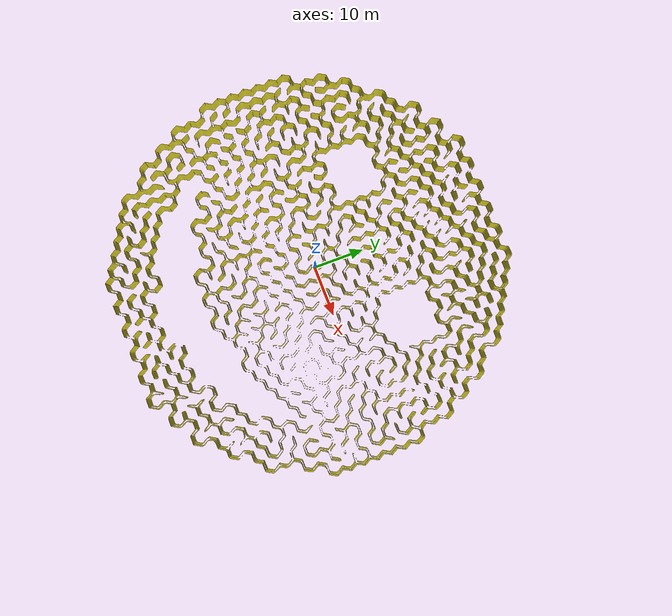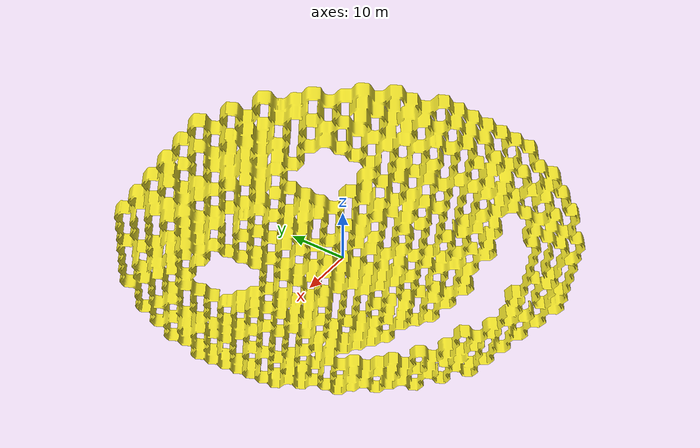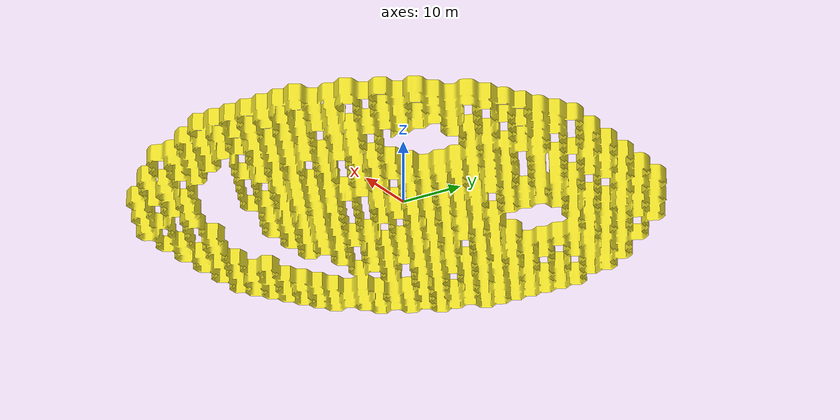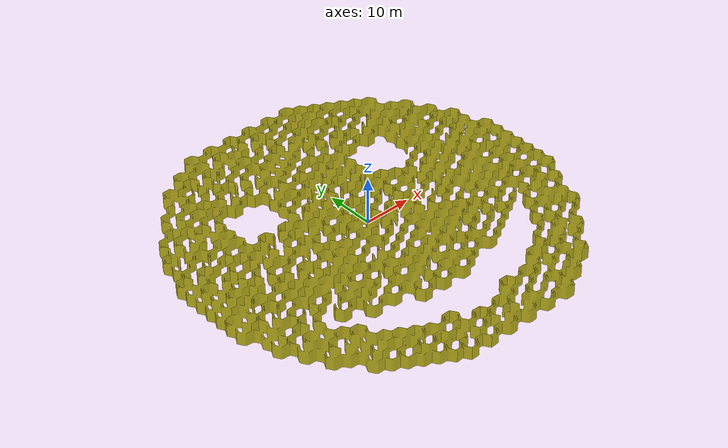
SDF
<?xml version="1.0" ?>
<sdf version="1.5">
  <model name="AEON_Yagoto">
    <static>true</static>
    <pose>0 0 0 0 0 0</pose>
    <link name="link">
      <collision name="collision">
        <geometry>
          <mesh>
            <uri>model://maze1/maze1.stl</uri>
            <scale>3 3 5</scale>
          </mesh>
        </geometry>
      </collision>
      <visual name="visual">
        <geometry>
          <mesh>
            <uri>model://maze1/maze1.stl</uri>
            <scale>3 3 5</scale>
          </mesh>
        </geometry>
        <cast_shadows>false</cast_shadows>
        <material>
          <script>
            <uri>file://media/materials/scripts/gazebo.material</uri>
            <name>Gazebo/Yellow</name>
          </script>
        </material>
      </visual>
    </link>
  </model>
</sdf>
